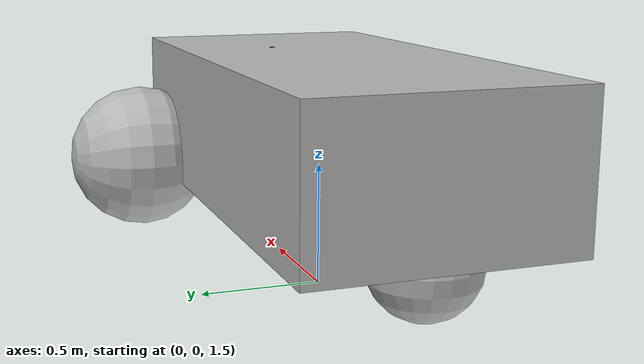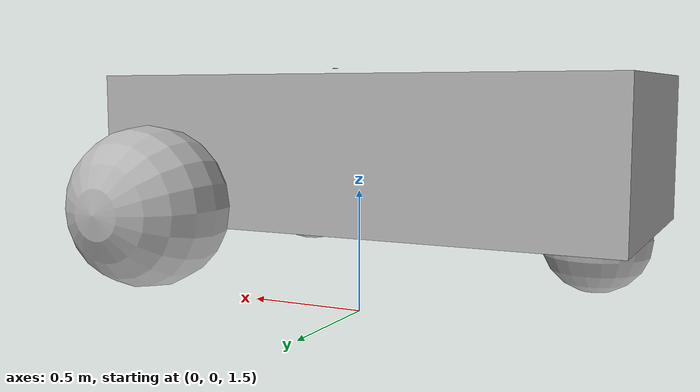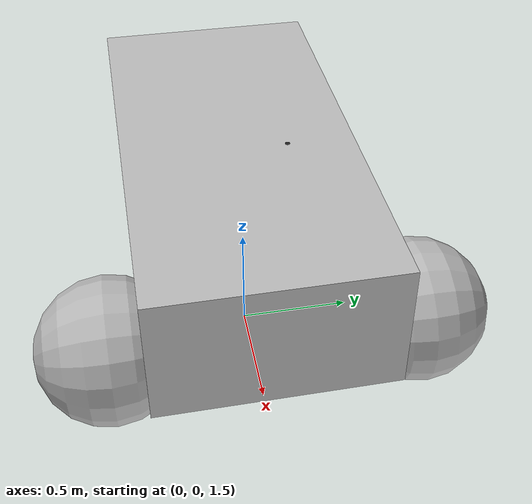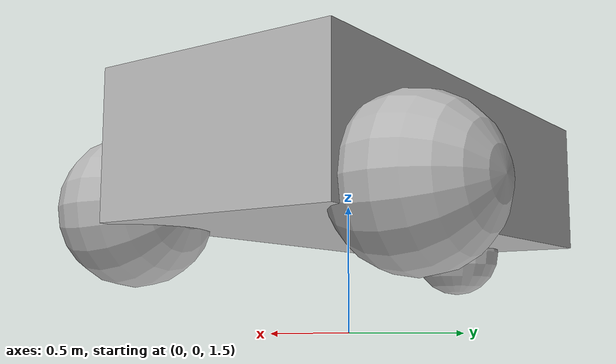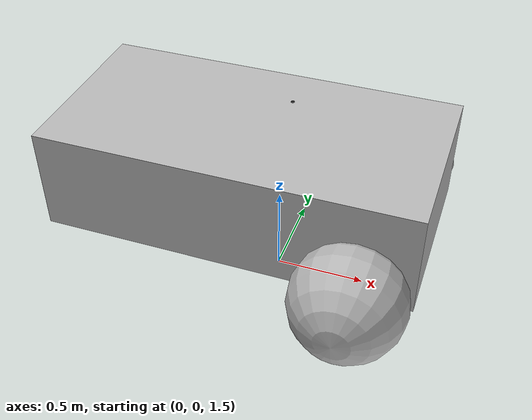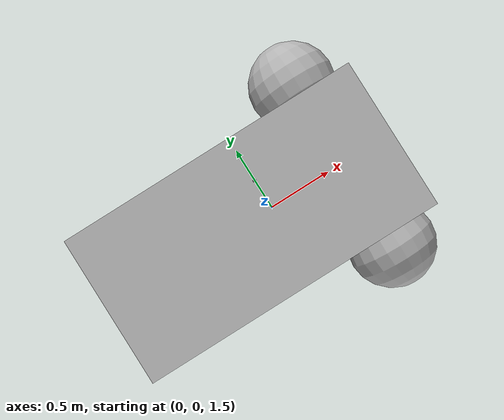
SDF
<?xml version="1.0" ?>
<sdf version="1.5">
<model name='vehicle'>
      <pose>0 0 2 0 -0 0</pose>

      <link name='chassis'>
        <pose>-0.151427 -0 0.175 0 -0 0</pose>
        <inertial>
          <mass>10.14395</mass>
          <inertia>
            <ixx>0.126164</ixx>
            <ixy>0</ixy>
            <ixz>0</ixz>
            <iyy>0.416519</iyy>
            <iyz>0</iyz>
            <izz>0.481014</izz>
          </inertia>
        </inertial>
        <visual name='visual'>
          <geometry>
            <box>
              <size>2.01142 1 0.568726</size>
            </box>
          </geometry>
        </visual>
        <collision name='collision'>
          <geometry>
            <box>
              <size>2.01142 1 0.568726</size>
            </box>
          </geometry>
            <surface>
            <friction>
              <ode>
                <mu>1</mu>
                <mu2>1</mu2>
                <slip1>0</slip1>
                <slip2>0</slip2>
              </ode>
            </friction>
            <contact>
              <ode>
                <soft_cfm>0</soft_cfm>
                <soft_erp>0.2</soft_erp>
                <kp>1e+13</kp>
                <kd>1</kd>
                <max_vel>0.01</max_vel>
                <min_depth>0.01</min_depth>
              </ode>
            </contact>
          </surface>
        </collision>
      </link>

      <link name='left_wheel'>
        <pose>0.554283 0.625029 -0.025 -1.5707 0 0</pose>
        <inertial>
          <mass>2</mass>
          <inertia>
            <ixx>0.145833</ixx>
            <ixy>0</ixy>
            <ixz>0</ixz>
            <iyy>0.145833</iyy>
            <iyz>0</iyz>
            <izz>0.125</izz>
          </inertia>
        </inertial>
        <visual name='visual'>
          <geometry>
            <sphere>
              <radius>0.3</radius>
            </sphere>
          </geometry>
        </visual>
        <collision name='collision'>
          <geometry>
            <sphere>
              <radius>0.3</radius>
            </sphere>
          </geometry>
          <surface>
            <friction>
              <ode>
                <mu>1</mu>
                <mu2>1</mu2>
                <slip1>0</slip1>
                <slip2>0</slip2>
              </ode>
            </friction>
            <contact>
              <ode>
                <soft_cfm>0</soft_cfm>
                <soft_erp>0.2</soft_erp>
                <kp>1e+13</kp>
                <kd>1</kd>
                <max_vel>0.01</max_vel>
                <min_depth>0.01</min_depth>
              </ode>
            </contact>
          </surface>
        </collision>
      </link>

      <link name='right_wheel'>
        <pose>0.554282 -0.625029 -0.025 -1.5707 0 0</pose>
        <inertial>
          <mass>2</mass>
          <inertia>
            <ixx>0.145833</ixx>
            <ixy>0</ixy>
            <ixz>0</ixz>n a vec
            <iyy>0.145833</iyy>
            <iyz>0</iyz>
            <izz>0.125</izz>
          </inertia>
        </inertial>
        <visual name='visual'>
          <geometry>
            <sphere>
              <radius>0.3</radius>
            </sphere>
          </geometry>
        </visual>
        <collision name='collision'>
          <geometry>
            <sphere>
              <radius>0.3</radius>
            </sphere>
          </geometry>
          <surface>
            <friction>
              <ode>
                <mu>1</mu>
                <mu2>1</mu2>
                <slip1>0</slip1>
                <slip2>0</slip2>
              </ode>
            </friction>
            <contact>
              <ode>
                <soft_cfm>0</soft_cfm>
                <soft_erp>0.2</soft_erp>
                <kp>1e+13</kp>
                <kd>1</kd>
                <max_vel>0.01</max_vel>
                <min_depth>0.01</min_depth>
              </ode>
            </contact>
          </surface>
        </collision>
      </link>

      <link name='caster'>
        <pose>-0.957138 -0 -0.125 0 -0 0</pose>
        <inertial>
          <mass>1</mass>
          <inertia>
            <ixx>0.1</ixx>
            <ixy>0</ixy>
            <ixz>0</ixz>
            <iyy>0.1</iyy>
            <iyz>0</iyz>
            <izz>0.1</izz>
          </inertia>
        </inertial>
        <visual name='visual'>
          <geometry>
            <sphere>
              <radius>0.2</radius>
            </sphere>
          </geometry>
        </visual>
        <collision name='collision'>
          <geometry>
            <sphere>
              <radius>0.2</radius>
            </sphere>
          </geometry>
        </collision>
      </link>

      <joint name='left_wheel_joint' type='revolute'>
        <parent>chassis</parent>
        <child>left_wheel</child>
        <axis>
          <xyz>0 0 1</xyz>
          <limit>
            <lower>-1.79769e+308</lower>
            <upper>1.79769e+308</upper>
          </limit>
        </axis>
      </joint>

      <joint name='right_wheel_joint' type='revolute'>
        <parent>chassis</parent>
        <child>right_wheel</child>
        <axis>
          <xyz>0 0 1</xyz>
          <limit>
            <lower>-1.79769e+308</lower>
            <upper>1.79769e+308</upper>
          </limit>
        </axis>
      </joint>

      <joint name='caster_wheel' type='ball'>
        <parent>chassis</parent>
        <child>caster</child>
      </joint>

      <plugin name='diff_drive' filename='libgazebo_ros_diff_drive.so'>

        <ros>
          <namespace>/demo</namespace>
          <remapping>cmd_vel:=key_vel</remapping>
          <remapping>odom:=odom</remapping>
        </ros>

        <!-- wheels -->
        <left_joint>left_wheel_joint</left_joint>
        <right_joint>right_wheel_joint</right_joint>

        <!-- kinematics -->
        <wheel_separation>1.25</wheel_separation>
        <wheel_diameter>0.6</wheel_diameter>

        <!-- limits -->
        <max_wheel_torque>20</max_wheel_torque>
        <max_wheel_acceleration>1.0</max_wheel_acceleration>

        <!-- output -->
        <publish_odom>true</publish_odom>
        <publish_odom_tf>true</publish_odom_tf>
        <publish_wheel_tf>true</publish_wheel_tf>

        <odometry_frame>odom_demo</odometry_frame>
        <robot_base_frame>chassis</robot_base_frame>

      </plugin>

    <include>
      <uri>model://gps_ros</uri>
      <name>gps1</name>
      <pose>0 0.2 0.484363 0 0 0</pose>
    </include>
    <joint name='gps1_joint' type='fixed'>
      <child>gps1::link</child>
      <parent>vehicle::chassis</parent>
    </joint>

  </model>
</sdf>

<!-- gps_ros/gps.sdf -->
<sdf version="1.6">
  <model name="gps">
    <link name="link">
      <pose>0 0 0 0 0 0</pose>
      <inertial>
        <pose>0 0 0 0 0 0</pose>
        <mass>0.015</mass>
        <inertia>
          <ixx>1e-05</ixx>
          <ixy>0</ixy>
          <ixz>0</ixz>
          <iyy>1e-05</iyy>
          <iyz>0</iyz>
          <izz>1e-05</izz>
        </inertia>
      </inertial>
      <visual name="visual">
        <geometry>
          <cylinder>
            <radius>0.01</radius>
            <length>0.002</length>
          </cylinder>
        </geometry>
        <material>
          <script>
            <name>Gazebo/Black</name>
          </script>
        </material>
      </visual>
      <sensor name="gps" type="gps">
        <pose>0 0 0 0 0 0</pose>
        <update_rate>5.0</update_rate>
        <always_on>true</always_on>
        <visualize>false</visualize>
        <!-- GpsSensor noise currently not used -->
        <plugin name="gps_plugin" filename="libgazebo_gps_plugin_ros.so">
          <robotNamespace>car</robotNamespace>
          <gpsNoise>true</gpsNoise>
          <gpsXYRandomWalk>2.0</gpsXYRandomWalk>
          <gpsZRandomWalk>4.0</gpsZRandomWalk>
          <gpsXYNoiseDensity>2.0e-4</gpsXYNoiseDensity>
          <gpsZNoiseDensity>4.0e-4</gpsZNoiseDensity>
          <gpsVXYNoiseDensity>0.2</gpsVXYNoiseDensity>
          <gpsVZNoiseDensity>0.4</gpsVZNoiseDensity>
        </plugin>
      </sensor>
    </link>
  </model>
</sdf>
